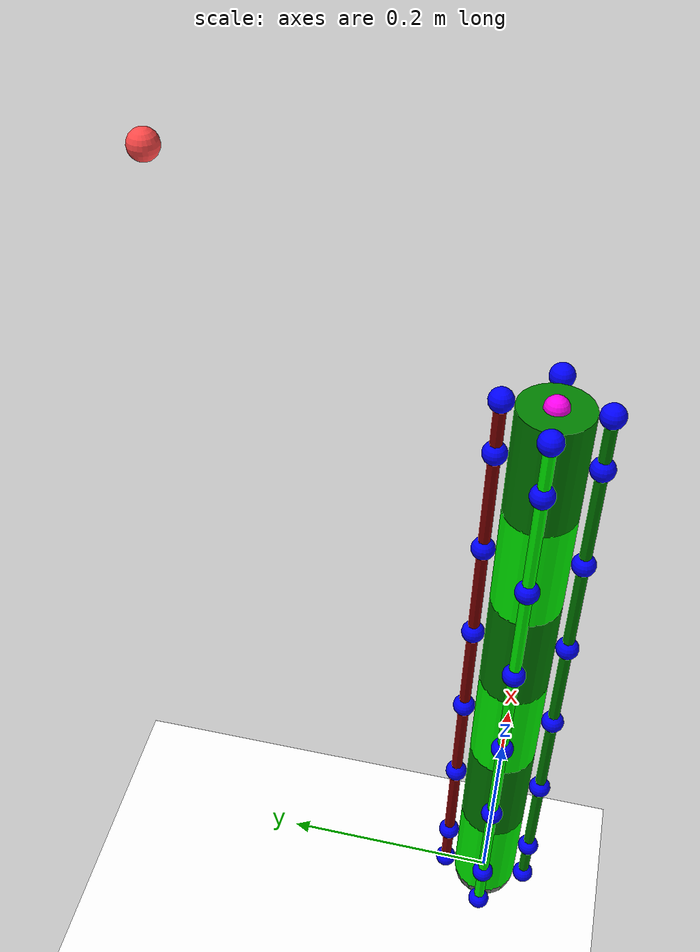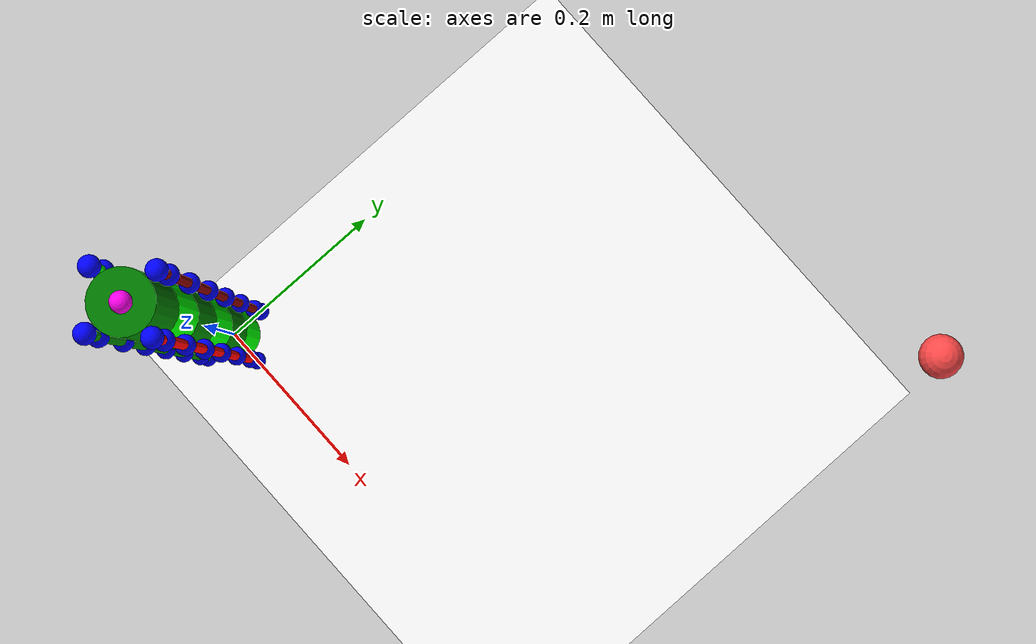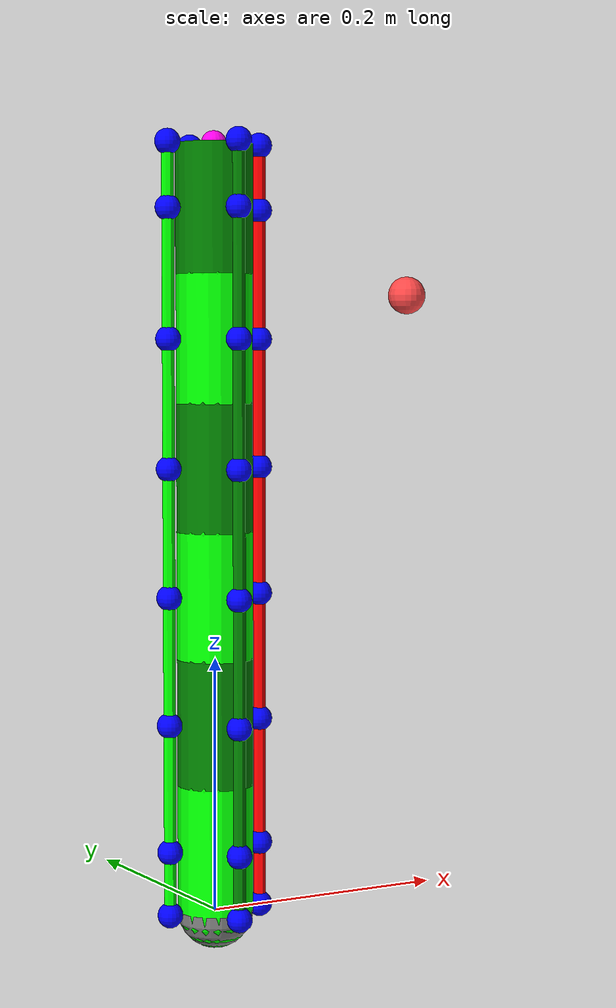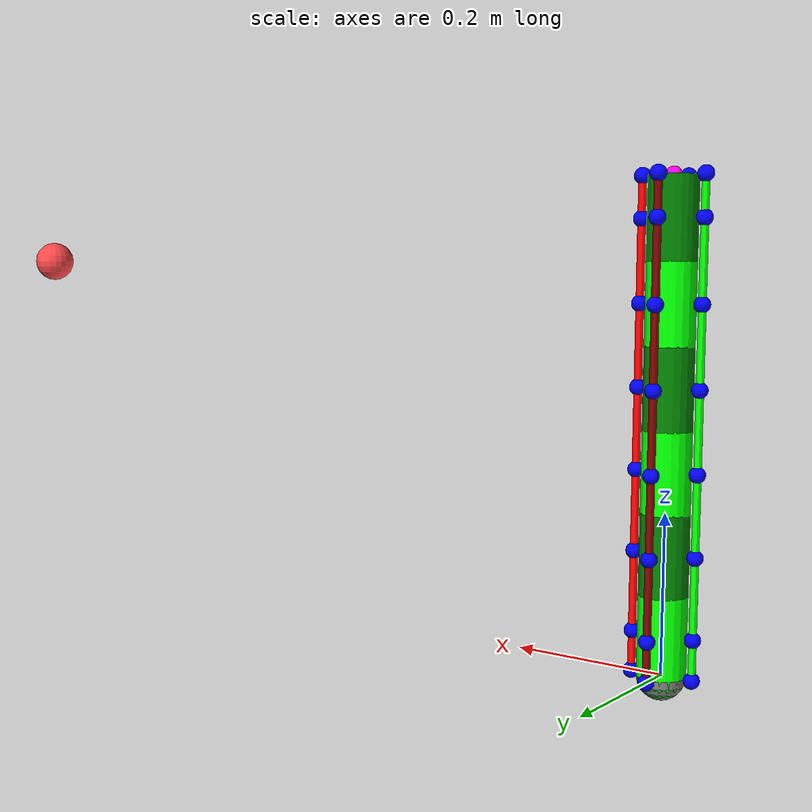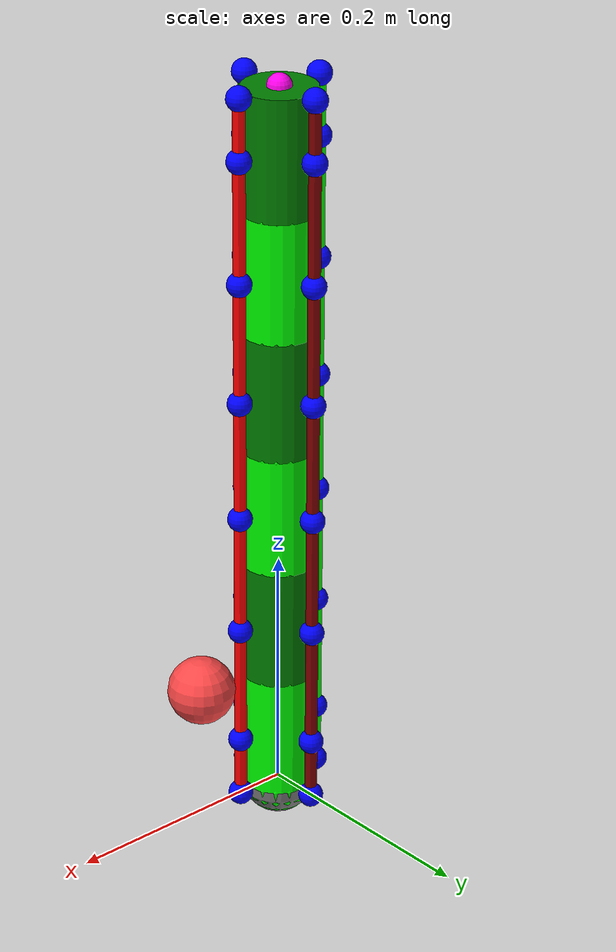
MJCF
<mujoco model="continuums_robot">
    <!-- Comments by CRTL K + CRTL C -->

    <!--coordinate local sorgt dafür dass children das parent coordsys benutzen und nicht das globale Koordsys'-->
    <!-- inertiafromgeom="true" Massenträgheitsmatrix wird von mujoco anhand der geometrie berechnet -->
    <default>
        <joint stiffness ="2" damping="0.1" springref="0" range="0 45" limited="true"/>
        <tendon stiffness="0" damping="0.1" width="0.005"/>
        <geom density="100" />
    </default>

    <compiler angle="degree" coordinate="local" inertiafromgeom="true"/>

    <option timestep="0.01" gravity="0 0 -9.81" />

    <visual>
        <headlight ambient="0.5 0.5 0.5" diffuse="0.5 0.5 0.5" specular="0 0 0"/>
        <quality shadowsize="0"/>
    </visual>

    <asset>
        <texture name="grid_tex" type="2d" builtin="checker" rgb1=".2 .3 .4" rgb2=".1 .2 .3"
             width="100" height="100" mark="edge" markrgb=".8 .8 .8"/>
        <material name="grid_material" texture="grid_tex" texrepeat="2 2" texuniform="true"/>
    </asset>

    <worldbody>
        <light directional="true" diffuse=".8 .8 .8" specular=".2 .2 .2" pos="0 0 5" dir="0 0 -1"/>
        <light pos="0 0 3" dir="0 0 -1" diffuse="0.8 0.8 0.8" ambient="0.3 0.3 0.3" castshadow="true"/>
        <light pos="3 0 1.5" dir="-1 0 -0.5" diffuse="0.5 0.5 0.5"/>
        <light pos="-3 0 1.5" dir="1 0 -0.5" diffuse="0.5 0.5 0.5"/>
        <light pos="0 3 1.5" dir="0 -1 -0.5" diffuse="0.5 0.5 0.5"/>
        <light pos="0 -3 1.5" dir="0 1 -0.5" diffuse="0.5 0.5 0.5"/>
        <geom name="floor" type="plane" pos="0 0 -0.8" size="2 2 0.1" material="grid_material" rgba="1 1 1 1"/>

        <!-- target body for rendering -->
        <body name="target" mocap="true" pos="0.5 0.5 0.5">
            <geom type="sphere" size="0.02" rgba="1 0.282 0.282 1" conaffinity="0" contype="0"/>
        </body>
        <body name="base" pos="0 0 0">
            <geom type="sphere" size="0.03" />
            <site name="s01" type="sphere" size="0.01" rgba="0 0 1 1" pos="0.04 0 0 " />
            <site name="s02" type="sphere" size="0.01" rgba="0 0 1 1" pos="0 0.04 0 " />
            <site name="s03" type="sphere" size="0.01" rgba="0 0 1 1" pos="-0.04 0 0 " />
            <site name="s04" type="sphere" size="0.01" rgba="0 0 1 1" pos="0 -0.04 0" />
            <body name="spine1" pos="0 0 0 ">
                <geom type="capsule" size="0.03" fromto="0 0 0 0 0 0.1" rgba="0 1 0 1"/>
                <joint name="joint1" type="ball"/>
                <joint name="joint1_slide" type="slide" axis="0 0 -1" range="0 0.015" stiffness="500" damping="20"/>
                <site name="s11" type="sphere" size="0.01" rgba="0 0 1 1" pos="0.04 0 0.05 " />
                <site name="s12" type="sphere" size="0.01" rgba="0 0 1 1" pos="0 0.04 0.05 " />
                <site name="s13" type="sphere" size="0.01" rgba="0 0 1 1" pos="-0.04 0 0.05 " />
                <site name="s14" type="sphere" size="0.01" rgba="0 0 1 1" pos="0 -0.04 0.05" />

                <body name="spine2" pos="0 0 0.1 ">
                    <geom type="capsule" size="0.03" fromto="0 0 0 0 0 0.1" rgba="0 0.5 0 1"/>
                    <joint name="joint2" type="ball"/>
                    <joint name="joint2_slide" type="slide" axis="0 0 -1" range="0 0.015" stiffness="500" damping="20"/>
                    <site name="s21" type="sphere" size="0.01" rgba="0 0 1 1" pos="0.04 0 0.05 " />
                    <site name="s22" type="sphere" size="0.01" rgba="0 0 1 1" pos="0 0.04 0.05 " />
                    <site name="s23" type="sphere" size="0.01" rgba="0 0 1 1" pos="-0.04 0 0.05 " />
                    <site name="s24" type="sphere" size="0.01" rgba="0 0 1 1" pos="0 -0.04 0.05" />

                    <body name="spine3" pos="0 0 0.1 ">
                        <geom type="capsule" size="0.03" fromto="0 0 0 0 0 0.1" rgba="0 1 0 1"/>
                        <joint name="joint3" type="ball"/>
                        <joint name="joint3_slide" type="slide" axis="0 0 -1" range="0 0.015" stiffness="500" damping="20"/>
                        <site name="s31" type="sphere" size="0.01" rgba="0 0 1 1" pos="0.04 0 0.05 " />
                        <site name="s32" type="sphere" size="0.01" rgba="0 0 1 1" pos="0 0.04 0.05 " />
                        <site name="s33" type="sphere" size="0.01" rgba="0 0 1 1" pos="-0.04 0 0.05 " />
                        <site name="s34" type="sphere" size="0.01" rgba="0 0 1 1" pos="0 -0.04 0.05" />

                        <body name="spine4" pos="0 0 0.1 ">
                            <geom type="capsule" size="0.03" fromto="0 0 0 0 0 0.1" rgba="0 0.5 0 1"/>
                            <joint name="joint4" type="ball"/>
                            <joint name="joint4_slide" type="slide" axis="0 0 -1" range="0 0.015" stiffness="500" damping="20"/>
                            <site name="s41" type="sphere" size="0.01" rgba="0 0 1 1" pos="0.04 0 0.05 " />
                            <site name="s42" type="sphere" size="0.01" rgba="0 0 1 1" pos="0 0.04 0.05 " />
                            <site name="s43" type="sphere" size="0.01" rgba="0 0 1 1" pos="-0.04 0 0.05 " />
                            <site name="s44" type="sphere" size="0.01" rgba="0 0 1 1" pos="0 -0.04 0.05" />

                            <body name="spine5" pos="0 0 0.1 ">
                                <geom type="capsule" size="0.03" fromto="0 0 0 0 0 0.1" rgba="0 1 0 1"/>
                                <joint name="joint5" type="ball"/>
                                <joint name="joint5_slide" type="slide" axis="0 0 -1" range="0 0.015" stiffness="500" damping="20"/>
                                <site name="s51" type="sphere" size="0.01" rgba="0 0 1 1" pos="0.04 0 0.05 " />
                                <site name="s52" type="sphere" size="0.01" rgba="0 0 1 1" pos="0 0.04 0.05 " />
                                <site name="s53" type="sphere" size="0.01" rgba="0 0 1 1" pos="-0.04 0 0.05 " />
                                <site name="s54" type="sphere" size="0.01" rgba="0 0 1 1" pos="0 -0.04 0.05" />

                                <body name="spine6" pos="0 0 0.1 ">
                                    <geom type="cylinder" size="0.03" fromto="0 0 0 0 0 0.1" rgba="0 0.5 0 1" />
                                    <joint name="joint6" type="ball"/>
                                    <joint name="joint6_slide" type="slide" axis="0 0 -1" range="0 0.015" stiffness="500" damping="20"/>
                                    <site name="s61" type="sphere" size="0.01" rgba="0 0 1 1" pos="0.04 0 0.05 " />
                                    <site name="s62" type="sphere" size="0.01" rgba="0 0 1 1" pos="0 0.04 0.05 " />
                                    <site name="s63" type="sphere" size="0.01" rgba="0 0 1 1" pos="-0.04 0 0.05 " />
                                    <site name="s64" type="sphere" size="0.01" rgba="0 0 1 1" pos="0 -0.04 0.05" />
                                    <site name="s71" type="sphere" size="0.01" rgba="0 0 1 1" pos="0.04 0 0.1 " />
                                    <site name="s72" type="sphere" size="0.01" rgba="0 0 1 1" pos="0 0.04 0.1 " />
                                    <site name="s73" type="sphere" size="0.01" rgba="0 0 1 1" pos="-0.04 0 0.1 " />
                                    <site name="s74" type="sphere" size="0.01" rgba="0 0 1 1" pos="0 -0.04 0.1" />
                                    <site name="tcp" pos="0 0 0.1" size="0.01" rgba="1 0 0.929 1"/>
                                </body>
                            </body>
                        </body>
                    </body>
                </body>
            </body>
        </body>
    </worldbody>
    <tendon>
        <spatial name="1" width="0.005" rgba="1 0 0 1">
            <site site="s01"/>
            <site site="s11"/>
            <site site="s21"/>
            <site site="s31"/>
            <site site="s41"/>
            <site site="s51"/>
            <site site="s61"/>
            <site site="s71"/>
        </spatial>
        <spatial name="2" width="0.005" rgba="0.5 0 0 1">
            <site site="s02"/>
            <site site="s12"/>
            <site site="s22"/>
            <site site="s32"/>
            <site site="s42"/>
            <site site="s52"/>
            <site site="s62"/>
            <site site="s72"/>
        </spatial>
        <spatial name="3" width="0.005" rgba="0 1 0 1">
            <site site="s03"/>
            <site site="s13"/>
            <site site="s23"/>
            <site site="s33"/>
            <site site="s43"/>
            <site site="s53"/>
            <site site="s63"/>
            <site site="s73"/>
        </spatial>
        <spatial name="4" width="0.005" rgba="0 0.5 0 1">
            <site site="s04"/>
            <site site="s14"/>
            <site site="s24"/>
            <site site="s34"/>
            <site site="s44"/>
            <site site="s54"/>
            <site site="s64"/>
            <site site="s74"/>
        </spatial>
    </tendon>
    <actuator>
        <motor tendon="1" ctrlrange="0 20" ctrllimited="true"/>
        <motor tendon="2" ctrlrange="0 20" ctrllimited="true"/>
        <motor tendon="3" ctrlrange="0 20" ctrllimited="true"/>
        <motor tendon="4" ctrlrange="0 20" ctrllimited="true"/>
    </actuator>
    <sensor>
        <accelerometer name="accel" site="tcp"/>
        <gyro name="gyro" site="tcp"/>
  </sensor>
</mujoco>
